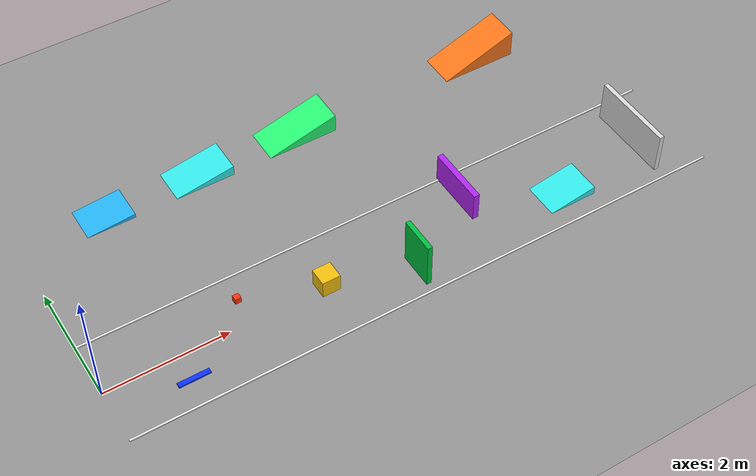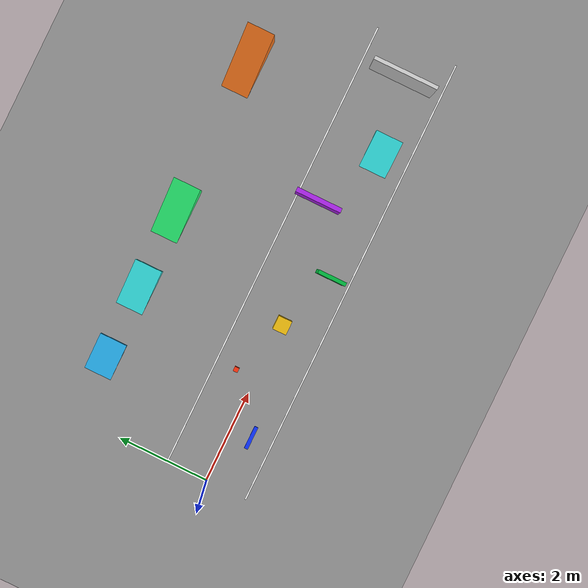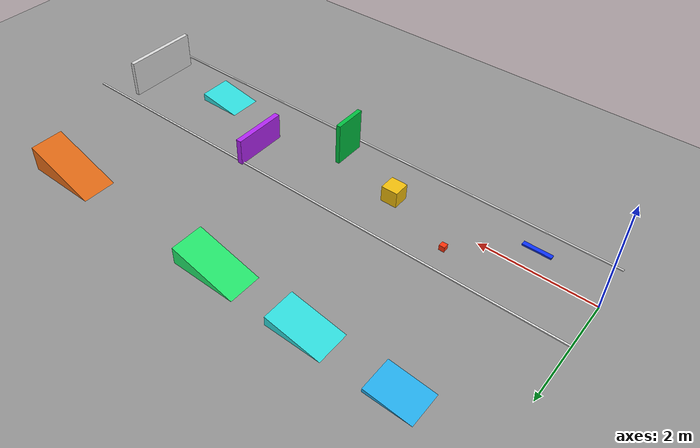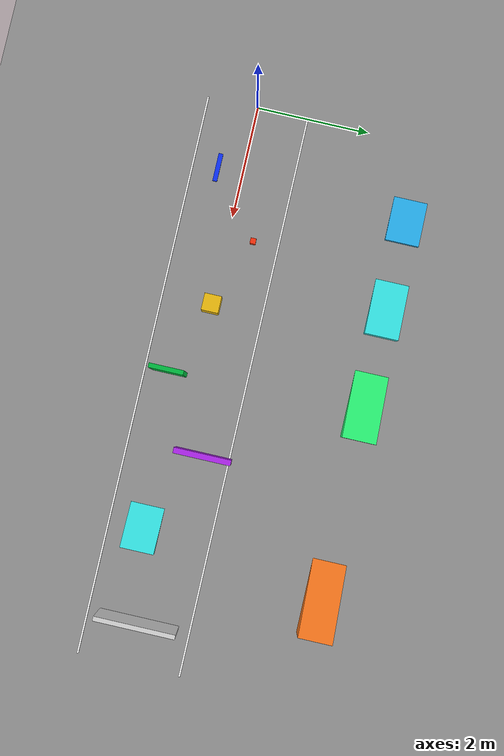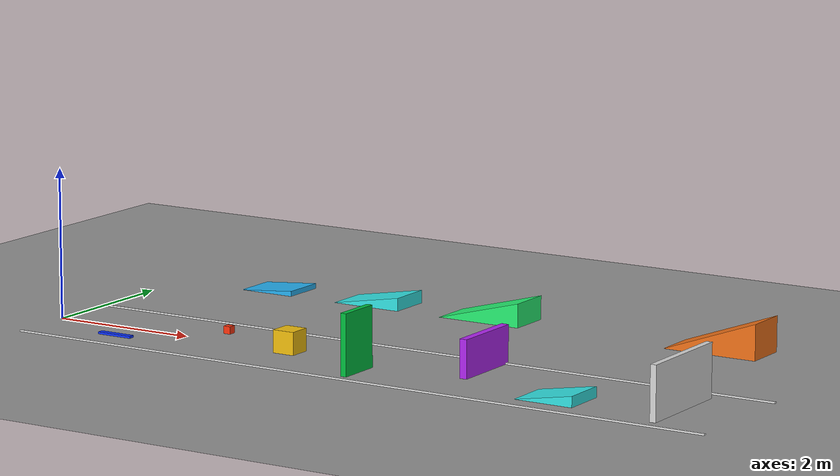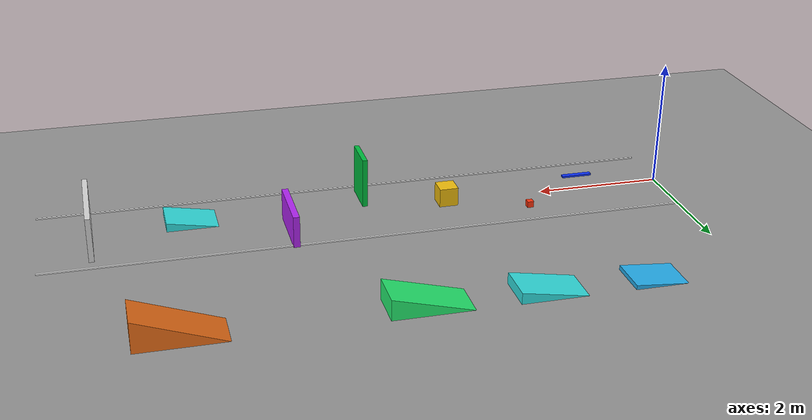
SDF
<?xml version="1.0"?>
<sdf version="1.8">
  <world name="tof_test_circuit">
    <physics name="1ms" type="ignored">
      <max_step_size>0.001</max_step_size>
      <real_time_factor>1.0</real_time_factor>
    </physics>

    <plugin filename="libgz-sim-physics-system.so" name="gz::sim::systems::Physics"/>
    <plugin filename="libgz-sim-user-commands-system.so" name="gz::sim::systems::UserCommands"/>
    <plugin filename="libgz-sim-scene-broadcaster-system.so" name="gz::sim::systems::SceneBroadcaster"/>
    <plugin filename="libgz-sim-sensors-system.so" name="gz::sim::systems::Sensors">
      <render_engine>ogre2</render_engine>
    </plugin>
    <plugin filename="libgz-sim-contact-system.so" name="gz::sim::systems::Contact"/>

    <light type="directional" name="sun">
      <cast_shadows>true</cast_shadows>
      <pose>0 0 10 0 0 0</pose>
      <diffuse>0.9 0.9 0.9 1</diffuse>
      <specular>0.2 0.2 0.2 1</specular>
      <direction>-0.4 0.2 -0.9</direction>
    </light>

    <model name="ground_plane">
      <static>true</static>
      <link name="link">
        <collision name="collision">
          <geometry>
            <plane>
              <normal>0 0 1</normal>
              <size>30 18</size>
            </plane>
          </geometry>
        </collision>
        <visual name="visual">
          <geometry>
            <plane>
              <normal>0 0 1</normal>
              <size>30 18</size>
            </plane>
          </geometry>
          <material>
            <ambient>0.58 0.58 0.58 1</ambient>
            <diffuse>0.58 0.58 0.58 1</diffuse>
            <specular>0.1 0.1 0.1 1</specular>
          </material>
        </visual>
      </link>
    </model>

    <model name="left_lane_marker">
      <static>true</static>
      <pose>5.0 0.90 0.01 0 0 0</pose>
      <link name="link">
        <visual name="visual">
          <geometry><box><size>10.0 0.03 0.02</size></box></geometry>
          <material>
            <ambient>1.0 1.0 1.0 1</ambient>
            <diffuse>1.0 1.0 1.0 1</diffuse>
          </material>
        </visual>
      </link>
    </model>

    <model name="right_lane_marker">
      <static>true</static>
      <pose>5.0 -0.90 0.01 0 0 0</pose>
      <link name="link">
        <visual name="visual">
          <geometry><box><size>10.0 0.03 0.02</size></box></geometry>
          <material>
            <ambient>1.0 1.0 1.0 1</ambient>
            <diffuse>1.0 1.0 1.0 1</diffuse>
          </material>
        </visual>
      </link>
    </model>

    <model name="tof_low_curb_3cm">
      <static>true</static>
      <pose>1.20 -0.45 0.015 0 0 0</pose>
      <link name="link">
        <collision name="collision">
          <geometry><box><size>0.50 0.08 0.03</size></box></geometry>
        </collision>
        <visual name="visual">
          <geometry><box><size>0.50 0.08 0.03</size></box></geometry>
          <material>
            <ambient>0.05 0.20 1.00 1</ambient>
            <diffuse>0.05 0.20 1.00 1</diffuse>
          </material>
        </visual>
      </link>
    </model>

    <model name="tof_cube_10cm">
      <static>true</static>
      <pose>2.35 0.45 0.05 0 0 0</pose>
      <link name="link">
        <collision name="collision">
          <geometry><box><size>0.10 0.10 0.10</size></box></geometry>
        </collision>
        <visual name="visual">
          <geometry><box><size>0.10 0.10 0.10</size></box></geometry>
          <material>
            <ambient>1.00 0.20 0.05 1</ambient>
            <diffuse>1.00 0.20 0.05 1</diffuse>
          </material>
        </visual>
      </link>
    </model>

    <model name="tof_box_30cm">
      <static>true</static>
      <pose>3.60 0.00 0.15 0 0 0</pose>
      <link name="link">
        <collision name="collision">
          <geometry><box><size>0.30 0.30 0.30</size></box></geometry>
        </collision>
        <visual name="visual">
          <geometry><box><size>0.30 0.30 0.30</size></box></geometry>
          <material>
            <ambient>0.95 0.75 0.05 1</ambient>
            <diffuse>0.95 0.75 0.05 1</diffuse>
          </material>
        </visual>
      </link>
    </model>

    <model name="tof_tall_panel">
      <static>true</static>
      <pose>4.90 -0.45 0.40 0 0 0</pose>
      <link name="link">
        <collision name="collision">
          <geometry><box><size>0.08 0.60 0.80</size></box></geometry>
        </collision>
        <visual name="visual">
          <geometry><box><size>0.08 0.60 0.80</size></box></geometry>
          <material>
            <ambient>0.00 0.75 0.25 1</ambient>
            <diffuse>0.00 0.75 0.25 1</diffuse>
          </material>
        </visual>
      </link>
    </model>

    <model name="tof_wide_panel">
      <static>true</static>
      <pose>6.20 0.45 0.25 0 0 0</pose>
      <link name="link">
        <collision name="collision">
          <geometry><box><size>0.10 1.00 0.50</size></box></geometry>
        </collision>
        <visual name="visual">
          <geometry><box><size>0.10 1.00 0.50</size></box></geometry>
          <material>
            <ambient>0.70 0.15 0.95 1</ambient>
            <diffuse>0.70 0.15 0.95 1</diffuse>
          </material>
        </visual>
      </link>
    </model>

    <model name="tof_ramp_10deg">
      <static>true</static>
      <pose>7.25 -0.30 0.0 0 0 0</pose>
      <link name="link">
        <collision name="collision">
          <geometry>
            <mesh>
              <uri>model://tof_test_obstacles/meshes/ramp_10deg_short.stl</uri>
            </mesh>
          </geometry>
          <surface>
            <friction>
              <ode>
                <mu>1.0</mu>
                <mu2>1.0</mu2>
              </ode>
            </friction>
          </surface>
        </collision>
        <visual name="visual">
          <geometry>
            <mesh>
              <uri>model://tof_test_obstacles/meshes/ramp_10deg_short.stl</uri>
            </mesh>
          </geometry>
          <material>
            <ambient>0.20 0.90 0.90 1</ambient>
            <diffuse>0.20 0.90 0.90 1</diffuse>
          </material>
        </visual>
      </link>
    </model>

    <model name="end_panel">
      <static>true</static>
      <pose>9.20 0.00 0.35 0 0 0</pose>
      <link name="link">
        <collision name="collision">
          <geometry><box><size>0.08 1.40 0.70</size></box></geometry>
        </collision>
        <visual name="visual">
          <geometry><box><size>0.08 1.40 0.70</size></box></geometry>
          <material>
            <ambient>0.85 0.85 0.85 1</ambient>
            <diffuse>0.85 0.85 0.85 1</diffuse>
          </material>
        </visual>
      </link>
    </model>

    <!-- Faixa lateral para futuro detector de rampas. As rampas ficam
         separadas por ~1,6 m para o robo observar uma inclinacao por vez.
         Altura aproximada = comprimento * sin(inclinacao). -->

    <model name="tof_ramp_5deg_low">
      <static>true</static>
      <pose>1.00 3.00 0.0 0 0 0</pose>
      <link name="link">
        <collision name="collision">
          <geometry>
            <mesh>
              <uri>model://tof_test_obstacles/meshes/ramp_5deg_low.stl</uri>
            </mesh>
          </geometry>
          <surface>
            <friction>
              <ode>
                <mu>1.0</mu>
                <mu2>1.0</mu2>
              </ode>
            </friction>
          </surface>
        </collision>
        <visual name="visual">
          <geometry>
            <mesh>
              <uri>model://tof_test_obstacles/meshes/ramp_5deg_low.stl</uri>
            </mesh>
          </geometry>
          <material>
            <ambient>0.15 0.70 0.95 1</ambient>
            <diffuse>0.15 0.70 0.95 1</diffuse>
          </material>
        </visual>
      </link>
    </model>

    <model name="tof_ramp_10deg_mid">
      <static>true</static>
      <pose>2.50 3.00 0.0 0 0 0</pose>
      <link name="link">
        <collision name="collision">
          <geometry>
            <mesh>
              <uri>model://tof_test_obstacles/meshes/ramp_10deg_mid.stl</uri>
            </mesh>
          </geometry>
          <surface>
            <friction>
              <ode>
                <mu>1.0</mu>
                <mu2>1.0</mu2>
              </ode>
            </friction>
          </surface>
        </collision>
        <visual name="visual">
          <geometry>
            <mesh>
              <uri>model://tof_test_obstacles/meshes/ramp_10deg_mid.stl</uri>
            </mesh>
          </geometry>
          <material>
            <ambient>0.20 0.90 0.90 1</ambient>
            <diffuse>0.20 0.90 0.90 1</diffuse>
          </material>
        </visual>
      </link>
    </model>

    <model name="tof_ramp_15deg_high">
      <static>true</static>
      <pose>4.15 3.00 0.0 0 0 0</pose>
      <link name="link">
        <collision name="collision">
          <geometry>
            <mesh>
              <uri>model://tof_test_obstacles/meshes/ramp_15deg_high.stl</uri>
            </mesh>
          </geometry>
          <surface>
            <friction>
              <ode>
                <mu>1.0</mu>
                <mu2>1.0</mu2>
              </ode>
            </friction>
          </surface>
        </collision>
        <visual name="visual">
          <geometry>
            <mesh>
              <uri>model://tof_test_obstacles/meshes/ramp_15deg_high.stl</uri>
            </mesh>
          </geometry>
          <material>
            <ambient>0.15 0.95 0.45 1</ambient>
            <diffuse>0.15 0.95 0.45 1</diffuse>
          </material>
        </visual>
      </link>
    </model>

    <model name="tof_ramp_20deg_steep">
      <static>true</static>
      <pose>7.50 3.00 0.0 0 0 0</pose>
      <link name="link">
        <collision name="collision">
          <geometry>
            <mesh>
              <uri>model://tof_test_obstacles/meshes/ramp_20deg_steep.stl</uri>
            </mesh>
          </geometry>
          <surface>
            <friction>
              <ode>
                <mu>1.0</mu>
                <mu2>1.0</mu2>
              </ode>
            </friction>
          </surface>
        </collision>
        <visual name="visual">
          <geometry>
            <mesh>
              <uri>model://tof_test_obstacles/meshes/ramp_20deg_steep.stl</uri>
            </mesh>
          </geometry>
          <material>
            <ambient>0.95 0.45 0.10 1</ambient>
            <diffuse>0.95 0.45 0.10 1</diffuse>
          </material>
        </visual>
      </link>
    </model>
  </world>
</sdf>
